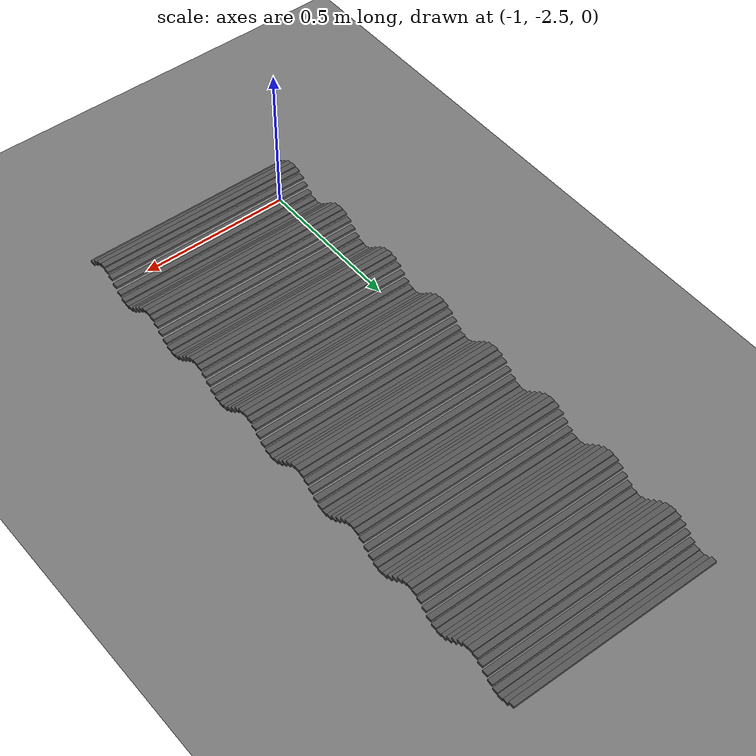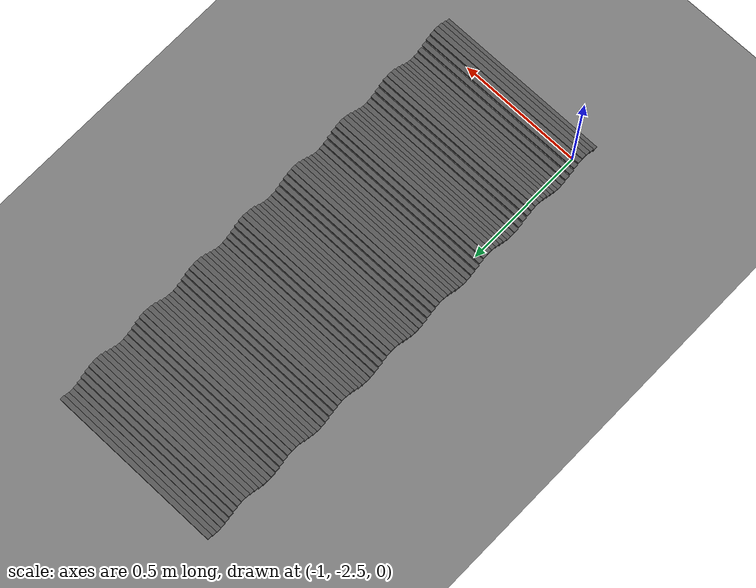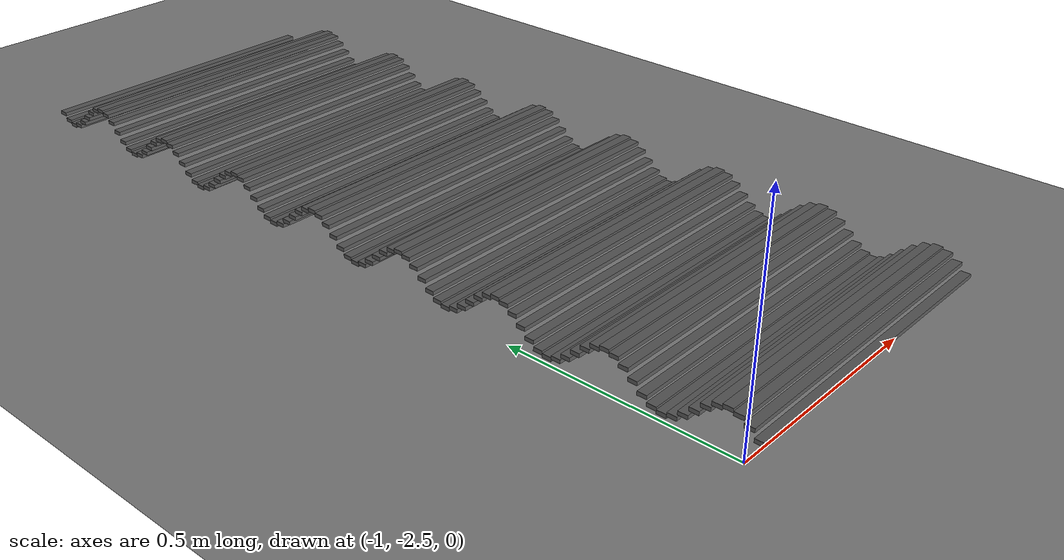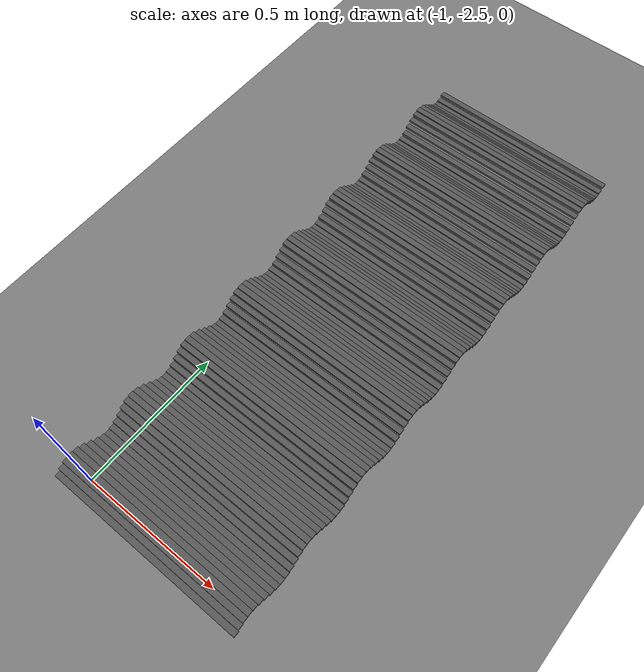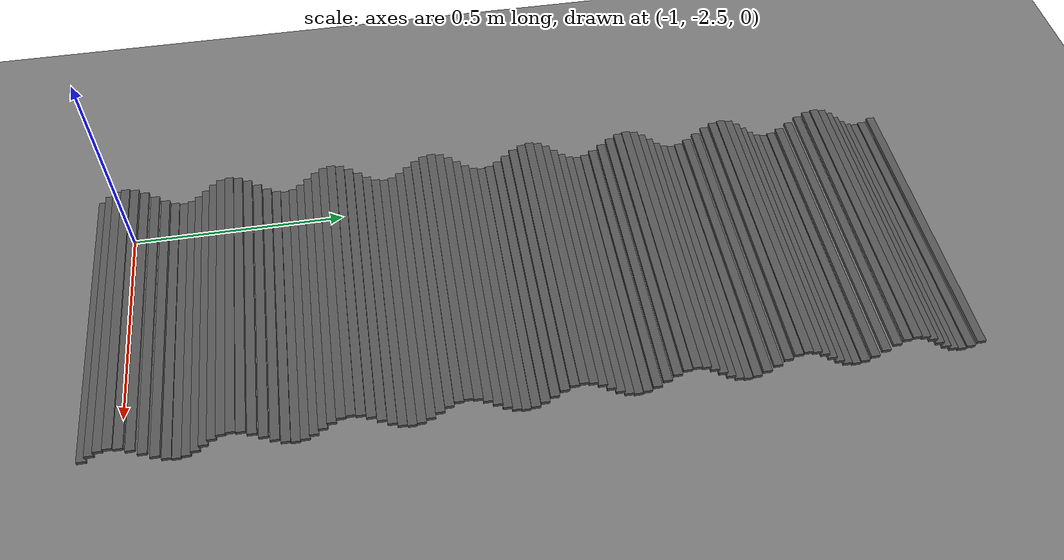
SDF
<sdf version="1.7">
 <world name="default">
  <plugin filename="gz-sim-physics-system" name="gz::sim::systems::Physics"/>
  <plugin filename="gz-sim-user-commands-system" name="gz::sim::systems::UserCommands"/>
  <plugin filename="gz-sim-scene-broadcaster-system" name="gz::sim::systems::SceneBroadcaster"/>
  <plugin filename="gz-sim-sensors-system" name="gz::sim::systems::Sensors">
   <render_engine>ogre2</render_engine>
  </plugin>
  <plugin filename="gz-sim-imu-system" name="gz::sim::systems::Imu"/>
  <physics name="default_physics" default="0" type="ode">
   <max_step_size>0.001</max_step_size>
   <real_time_factor>1</real_time_factor>
   <real_time_update_rate>1000</real_time_update_rate>
  </physics>
  <scene><ambient>0.4 0.4 0.4 1</ambient><background>0.7 0.7 0.7 1</background><shadows>1</shadows></scene>
  <light name="sun" type="directional">
   <pose>0 0 10 0 0 0</pose>
   <diffuse>0.8 0.8 0.8 1</diffuse>
   <specular>0.2 0.2 0.2 1</specular>
   <direction>-0.5 0.1 -0.9</direction>
  </light>
  <model name="ground_plane">
   <static>1</static>
   <link name="link">
    <collision name="collision">
     <geometry><plane><normal>0 0 1</normal><size>100 100</size></plane></geometry>
    </collision>
    <visual name="visual">
     <cast_shadows>0</cast_shadows>
     <geometry><plane><normal>0 0 1</normal><size>100 100</size></plane></geometry>
     <material><ambient>0.5 0.5 0.5 1</ambient><diffuse>0.5 0.5 0.5 1</diffuse></material>
    </visual>
   </link>
  </model>
  <model name="wave_strip_240mm_70mm">
   <static>true</static>
   <link name="wave_link">
    <collision name="c_000">
     <pose>-0.7000 -2.5500 0.0920 0 0 0</pose>
     <geometry><box><size>0.7000 0.0200 0.0080</size></box></geometry>
     <surface><friction><ode><mu>100</mu><mu2>50</mu2></ode></friction></surface>
    </collision>
    <visual name="v_000">
     <pose>-0.7000 -2.5500 0.0920 0 0 0</pose>
     <geometry><box><size>0.7000 0.0200 0.0080</size></box></geometry>
     <material>
      <ambient>0.20 0.20 0.20 1</ambient>
      <diffuse>0.35 0.35 0.35 1</diffuse>
      <specular>0.02 0.02 0.02 1</specular>
     </material>
    </visual>
    <collision name="c_001">
     <pose>-0.7000 -2.5300 0.1095 0 0 0</pose>
     <geometry><box><size>0.7000 0.0200 0.0080</size></box></geometry>
     <surface><friction><ode><mu>100</mu><mu2>50</mu2></ode></friction></surface>
    </collision>
    <visual name="v_001">
     <pose>-0.7000 -2.5300 0.1095 0 0 0</pose>
     <geometry><box><size>0.7000 0.0200 0.0080</size></box></geometry>
     <material>
      <ambient>0.20 0.20 0.20 1</ambient>
      <diffuse>0.35 0.35 0.35 1</diffuse>
      <specular>0.02 0.02 0.02 1</specular>
     </material>
    </visual>
    <collision name="c_002">
     <pose>-0.7000 -2.5100 0.1223 0 0 0</pose>
     <geometry><box><size>0.7000 0.0200 0.0080</size></box></geometry>
     <surface><friction><ode><mu>100</mu><mu2>50</mu2></ode></friction></surface>
    </collision>
    <visual name="v_002">
     <pose>-0.7000 -2.5100 0.1223 0 0 0</pose>
     <geometry><box><size>0.7000 0.0200 0.0080</size></box></geometry>
     <material>
      <ambient>0.20 0.20 0.20 1</ambient>
      <diffuse>0.35 0.35 0.35 1</diffuse>
      <specular>0.02 0.02 0.02 1</specular>
     </material>
    </visual>
    <collision name="c_003">
     <pose>-0.7000 -2.4900 0.1270 0 0 0</pose>
     <geometry><box><size>0.7000 0.0200 0.0080</size></box></geometry>
     <surface><friction><ode><mu>100</mu><mu2>50</mu2></ode></friction></surface>
    </collision>
    <visual name="v_003">
     <pose>-0.7000 -2.4900 0.1270 0 0 0</pose>
     <geometry><box><size>0.7000 0.0200 0.0080</size></box></geometry>
     <material>
      <ambient>0.20 0.20 0.20 1</ambient>
      <diffuse>0.35 0.35 0.35 1</diffuse>
      <specular>0.02 0.02 0.02 1</specular>
     </material>
    </visual>
    <collision name="c_004">
     <pose>-0.7000 -2.4700 0.1223 0 0 0</pose>
     <geometry><box><size>0.7000 0.0200 0.0080</size></box></geometry>
     <surface><friction><ode><mu>100</mu><mu2>50</mu2></ode></friction></surface>
    </collision>
    <visual name="v_004">
     <pose>-0.7000 -2.4700 0.1223 0 0 0</pose>
     <geometry><box><size>0.7000 0.0200 0.0080</size></box></geometry>
     <material>
      <ambient>0.20 0.20 0.20 1</ambient>
      <diffuse>0.35 0.35 0.35 1</diffuse>
      <specular>0.02 0.02 0.02 1</specular>
     </material>
    </visual>
    <collision name="c_005">
     <pose>-0.7000 -2.4500 0.1095 0 0 0</pose>
     <geometry><box><size>0.7000 0.0200 0.0080</size></box></geometry>
     <surface><friction><ode><mu>100</mu><mu2>50</mu2></ode></friction></surface>
    </collision>
    <visual name="v_005">
     <pose>-0.7000 -2.4500 0.1095 0 0 0</pose>
     <geometry><box><size>0.7000 0.0200 0.0080</size></box></geometry>
     <material>
      <ambient>0.20 0.20 0.20 1</ambient>
      <diffuse>0.35 0.35 0.35 1</diffuse>
      <specular>0.02 0.02 0.02 1</specular>
     </material>
    </visual>
    <collision name="c_006">
     <pose>-0.7000 -2.4300 0.0920 0 0 0</pose>
     <geometry><box><size>0.7000 0.0200 0.0080</size></box></geometry>
     <surface><friction><ode><mu>100</mu><mu2>50</mu2></ode></friction></surface>
    </collision>
    <visual name="v_006">
     <pose>-0.7000 -2.4300 0.0920 0 0 0</pose>
     <geometry><box><size>0.7000 0.0200 0.0080</size></box></geometry>
     <material>
      <ambient>0.20 0.20 0.20 1</ambient>
      <diffuse>0.35 0.35 0.35 1</diffuse>
      <specular>0.02 0.02 0.02 1</specular>
     </material>
    </visual>
    <collision name="c_007">
     <pose>-0.7000 -2.4100 0.0745 0 0 0</pose>
     <geometry><box><size>0.7000 0.0200 0.0080</size></box></geometry>
     <surface><friction><ode><mu>100</mu><mu2>50</mu2></ode></friction></surface>
    </collision>
    <visual name="v_007">
     <pose>-0.7000 -2.4100 0.0745 0 0 0</pose>
     <geometry><box><size>0.7000 0.0200 0.0080</size></box></geometry>
     <material>
      <ambient>0.20 0.20 0.20 1</ambient>
      <diffuse>0.35 0.35 0.35 1</diffuse>
      <specular>0.02 0.02 0.02 1</specular>
     </material>
    </visual>
    <collision name="c_008">
     <pose>-0.7000 -2.3900 0.0617 0 0 0</pose>
     <geometry><box><size>0.7000 0.0200 0.0080</size></box></geometry>
     <surface><friction><ode><mu>100</mu><mu2>50</mu2></ode></friction></surface>
    </collision>
    <visual name="v_008">
     <pose>-0.7000 -2.3900 0.0617 0 0 0</pose>
     <geometry><box><size>0.7000 0.0200 0.0080</size></box></geometry>
     <material>
      <ambient>0.20 0.20 0.20 1</ambient>
      <diffuse>0.35 0.35 0.35 1</diffuse>
      <specular>0.02 0.02 0.02 1</specular>
     </material>
    </visual>
    <collision name="c_009">
     <pose>-0.7000 -2.3700 0.0570 0 0 0</pose>
     <geometry><box><size>0.7000 0.0200 0.0080</size></box></geometry>
     <surface><friction><ode><mu>100</mu><mu2>50</mu2></ode></friction></surface>
    </collision>
    <visual name="v_009">
     <pose>-0.7000 -2.3700 0.0570 0 0 0</pose>
     <geometry><box><size>0.7000 0.0200 0.0080</size></box></geometry>
     <material>
      <ambient>0.20 0.20 0.20 1</ambient>
      <diffuse>0.35 0.35 0.35 1</diffuse>
      <specular>0.02 0.02 0.02 1</specular>
     </material>
    </visual>
    <collision name="c_010">
     <pose>-0.7000 -2.3500 0.0617 0 0 0</pose>
     <geometry><box><size>0.7000 0.0200 0.0080</size></box></geometry>
     <surface><friction><ode><mu>100</mu><mu2>50</mu2></ode></friction></surface>
    </collision>
    <visual name="v_010">
     <pose>-0.7000 -2.3500 0.0617 0 0 0</pose>
     <geometry><box><size>0.7000 0.0200 0.0080</size></box></geometry>
     <material>
      <ambient>0.20 0.20 0.20 1</ambient>
      <diffuse>0.35 0.35 0.35 1</diffuse>
      <specular>0.02 0.02 0.02 1</specular>
     </material>
    </visual>
    <collision name="c_011">
     <pose>-0.7000 -2.3300 0.0745 0 0 0</pose>
     <geometry><box><size>0.7000 0.0200 0.0080</size></box></geometry>
     <surface><friction><ode><mu>100</mu><mu2>50</mu2></ode></friction></surface>
    </collision>
    <visual name="v_011">
     <pose>-0.7000 -2.3300 0.0745 0 0 0</pose>
     <geometry><box><size>0.7000 0.0200 0.0080</size></box></geometry>
     <material>
      <ambient>0.20 0.20 0.20 1</ambient>
      <diffuse>0.35 0.35 0.35 1</diffuse>
      <specular>0.02 0.02 0.02 1</specular>
     </material>
    </visual>
    <collision name="c_012">
     <pose>-0.7000 -2.3100 0.0920 0 0 0</pose>
     <geometry><box><size>0.7000 0.0200 0.0080</size></box></geometry>
     <surface><friction><ode><mu>100</mu><mu2>50</mu2></ode></friction></surface>
    </collision>
    <visual name="v_012">
     <pose>-0.7000 -2.3100 0.0920 0 0 0</pose>
     <geometry><box><size>0.7000 0.0200 0.0080</size></box></geometry>
     <material>
      <ambient>0.20 0.20 0.20 1</ambient>
      <diffuse>0.35 0.35 0.35 1</diffuse>
      <specular>0.02 0.02 0.02 1</specular>
     </material>
    </visual>
    <collision name="c_013">
     <pose>-0.7000 -2.2900 0.1095 0 0 0</pose>
     <geometry><box><size>0.7000 0.0200 0.0080</size></box></geometry>
     <surface><friction><ode><mu>100</mu><mu2>50</mu2></ode></friction></surface>
    </collision>
    <visual name="v_013">
     <pose>-0.7000 -2.2900 0.1095 0 0 0</pose>
     <geometry><box><size>0.7000 0.0200 0.0080</size></box></geometry>
     <material>
      <ambient>0.20 0.20 0.20 1</ambient>
      <diffuse>0.35 0.35 0.35 1</diffuse>
      <specular>0.02 0.02 0.02 1</specular>
     </material>
    </visual>
    <collision name="c_014">
     <pose>-0.7000 -2.2700 0.1223 0 0 0</pose>
     <geometry><box><size>0.7000 0.0200 0.0080</size></box></geometry>
     <surface><friction><ode><mu>100</mu><mu2>50</mu2></ode></friction></surface>
    </collision>
    <visual name="v_014">
     <pose>-0.7000 -2.2700 0.1223 0 0 0</pose>
     <geometry><box><size>0.7000 0.0200 0.0080</size></box></geometry>
     <material>
      <ambient>0.20 0.20 0.20 1</ambient>
      <diffuse>0.35 0.35 0.35 1</diffuse>
      <specular>0.02 0.02 0.02 1</specular>
     </material>
    </visual>
    <collision name="c_015">
     <pose>-0.7000 -2.2500 0.1270 0 0 0</pose>
     <geometry><box><size>0.7000 0.0200 0.0080</size></box></geometry>
     <surface><friction><ode><mu>100</mu><mu2>50</mu2></ode></friction></surface>
    </collision>
    <visual name="v_015">
     <pose>-0.7000 -2.2500 0.1270 0 0 0</pose>
     <geometry><box><size>0.7000 0.0200 0.0080</size></box></geometry>
     <material>
      <ambient>0.20 0.20 0.20 1</ambient>
      <diffuse>0.35 0.35 0.35 1</diffuse>
      <specular>0.02 0.02 0.02 1</specular>
     </material>
    </visual>
    <collision name="c_016">
     <pose>-0.7000 -2.2300 0.1223 0 0 0</pose>
     <geometry><box><size>0.7000 0.0200 0.0080</size></box></geometry>
     <surface><friction><ode><mu>100</mu><mu2>50</mu2></ode></friction></surface>
    </collision>
    <visual name="v_016">
     <pose>-0.7000 -2.2300 0.1223 0 0 0</pose>
     <geometry><box><size>0.7000 0.0200 0.0080</size></box></geometry>
     <material>
      <ambient>0.20 0.20 0.20 1</ambient>
      <diffuse>0.35 0.35 0.35 1</diffuse>
      <specular>0.02 0.02 0.02 1</specular>
     </material>
    </visual>
    <collision name="c_017">
     <pose>-0.7000 -2.2100 0.1095 0 0 0</pose>
     <geometry><box><size>0.7000 0.0200 0.0080</size></box></geometry>
     <surface><friction><ode><mu>100</mu><mu2>50</mu2></ode></friction></surface>
    </collision>
    <visual name="v_017">
     <pose>-0.7000 -2.2100 0.1095 0 0 0</pose>
     <geometry><box><size>0.7000 0.0200 0.0080</size></box></geometry>
     <material>
      <ambient>0.20 0.20 0.20 1</ambient>
      <diffuse>0.35 0.35 0.35 1</diffuse>
      <specular>0.02 0.02 0.02 1</specular>
     </material>
    </visual>
    <collision name="c_018">
     <pose>-0.7000 -2.1900 0.0920 0 0 0</pose>
     <geometry><box><size>0.7000 0.0200 0.0080</size></box></geometry>
     <surface><friction><ode><mu>100</mu><mu2>50</mu2></ode></friction></surface>
    </collision>
    <visual name="v_018">
     <pose>-0.7000 -2.1900 0.0920 0 0 0</pose>
     <geometry><box><size>0.7000 0.0200 0.0080</size></box></geometry>
     <material>
      <ambient>0.20 0.20 0.20 1</ambient>
      <diffuse>0.35 0.35 0.35 1</diffuse>
      <specular>0.02 0.02 0.02 1</specular>
     </material>
    </visual>
    <collision name="c_019">
     <pose>-0.7000 -2.1700 0.0745 0 0 0</pose>
     <geometry><box><size>0.7000 0.0200 0.0080</size></box></geometry>
     <surface><friction><ode><mu>100</mu><mu2>50</mu2></ode></friction></surface>
    </collision>
    <visual name="v_019">
     <pose>-0.7000 -2.1700 0.0745 0 0 0</pose>
     <geometry><box><size>0.7000 0.0200 0.0080</size></box></geometry>
     <material>
      <ambient>0.20 0.20 0.20 1</ambient>
      <diffuse>0.35 0.35 0.35 1</diffuse>
      <specular>0.02 0.02 0.02 1</specular>
     </material>
    </visual>
    <collision name="c_020">
     <pose>-0.7000 -2.1500 0.0617 0 0 0</pose>
     <geometry><box><size>0.7000 0.0200 0.0080</size></box></geometry>
     <surface><friction><ode><mu>100</mu><mu2>50</mu2></ode></friction></surface>
    </collision>
    <visual name="v_020">
     <pose>-0.7000 -2.1500 0.0617 0 0 0</pose>
     <geometry><box><size>0.7000 0.0200 0.0080</size></box></geometry>
     <material>
      <ambient>0.20 0.20 0.20 1</ambient>
      <diffuse>0.35 0.35 0.35 1</diffuse>
      <specular>0.02 0.02 0.02 1</specular>
     </material>
    </visual>
    <collision name="c_021">
     <pose>-0.7000 -2.1300 0.0570 0 0 0</pose>
     <geometry><box><size>0.7000 0.0200 0.0080</size></box></geometry>
     <surface><friction><ode><mu>100</mu><mu2>50</mu2></ode></friction></surface>
    </collision>
    <visual name="v_021">
     <pose>-0.7000 -2.1300 0.0570 0 0 0</pose>
     <geometry><box><size>0.7000 0.0200 0.0080</size></box></geometry>
     <material>
      <ambient>0.20 0.20 0.20 1</ambient>
      <diffuse>0.35 0.35 0.35 1</diffuse>
      <specular>0.02 0.02 0.02 1</specular>
     </material>
    </visual>
    <collision name="c_022">
     <pose>-0.7000 -2.1100 0.0617 0 0 0</pose>
     <geometry><box><size>0.7000 0.0200 0.0080</size></box></geometry>
     <surface><friction><ode><mu>100</mu><mu2>50</mu2></ode></friction></surface>
    </collision>
    <visual name="v_022">
     <pose>-0.7000 -2.1100 0.0617 0 0 0</pose>
     <geometry><box><size>0.7000 0.0200 0.0080</size></box></geometry>
     <material>
      <ambient>0.20 0.20 0.20 1</ambient>
      <diffuse>0.35 0.35 0.35 1</diffuse>
      <specular>0.02 0.02 0.02 1</specular>
     </material>
    </visual>
    <collision name="c_023">
     <pose>-0.7000 -2.0900 0.0745 0 0 0</pose>
     <geometry><box><size>0.7000 0.0200 0.0080</size></box></geometry>
     <surface><friction><ode><mu>100</mu><mu2>50</mu2></ode></friction></surface>
    </collision>
    <visual name="v_023">
     <pose>-0.7000 -2.0900 0.0745 0 0 0</pose>
     <geometry><box><size>0.7000 0.0200 0.0080</size></box></geometry>
     <material>
      <ambient>0.20 0.20 0.20 1</ambient>
      <diffuse>0.35 0.35 0.35 1</diffuse>
      <specular>0.02 0.02 0.02 1</specular>
     </material>
    </visual>
    <collision name="c_024">
     <pose>-0.7000 -2.0700 0.0920 0 0 0</pose>
     <geometry><box><size>0.7000 0.0200 0.0080</size></box></geometry>
     <surface><friction><ode><mu>100</mu><mu2>50</mu2></ode></friction></surface>
    </collision>
    <visual name="v_024">
     <pose>-0.7000 -2.0700 0.0920 0 0 0</pose>
     <geometry><box><size>0.7000 0.0200 0.0080</size></box></geometry>
     <material>
      <ambient>0.20 0.20 0.20 1</ambient>
      <diffuse>0.35 0.35 0.35 1</diffuse>
      <specular>0.02 0.02 0.02 1</specular>
     </material>
    </visual>
    <collision name="c_025">
     <pose>-0.7000 -2.0500 0.1095 0 0 0</pose>
     <geometry><box><size>0.7000 0.0200 0.0080</size></box></geometry>
     <surface><friction><ode><mu>100</mu><mu2>50</mu2></ode></friction></surface>
    </collision>
    <visual name="v_025">
     <pose>-0.7000 -2.0500 0.1095 0 0 0</pose>
     <geometry><box><size>0.7000 0.0200 0.0080</size></box></geometry>
     <material>
      <ambient>0.20 0.20 0.20 1</ambient>
      <diffuse>0.35 0.35 0.35 1</diffuse>
      <specular>0.02 0.02 0.02 1</specular>
     </material>
    </visual>
    <collision name="c_026">
     <pose>-0.7000 -2.0300 0.1223 0 0 0</pose>
     <geometry><box><size>0.7000 0.0200 0.0080</size></box></geometry>
     <surface><friction><ode><mu>100</mu><mu2>50</mu2></ode></friction></surface>
    </collision>
    <visual name="v_026">
     <pose>-0.7000 -2.0300 0.1223 0 0 0</pose>
     <geometry><box><size>0.7000 0.0200 0.0080</size></box></geometry>
     <material>
      <ambient>0.20 0.20 0.20 1</ambient>
      <diffuse>0.35 0.35 0.35 1</diffuse>
      <specular>0.02 0.02 0.02 1</specular>
     </material>
    </visual>
    <collision name="c_027">
     <pose>-0.7000 -2.0100 0.1270 0 0 0</pose>
     <geometry><box><size>0.7000 0.0200 0.0080</size></box></geometry>
     <surface><friction><ode><mu>100</mu><mu2>50</mu2></ode></friction></surface>
    </collision>
    <visual name="v_027">
     <pose>-0.7000 -2.0100 0.1270 0 0 0</pose>
     <geometry><box><size>0.7000 0.0200 0.0080</size></box></geometry>
     <material>
      <ambient>0.20 0.20 0.20 1</ambient>
      <diffuse>0.35 0.35 0.35 1</diffuse>
      <specular>0.02 0.02 0.02 1</specular>
     </material>
    </visual>
    <collision name="c_028">
     <pose>-0.7000 -1.9900 0.1223 0 0 0</pose>
     <geometry><box><size>0.7000 0.0200 0.0080</size></box></geometry>
     <surface><friction><ode><mu>100</mu><mu2>50</mu2></ode></friction></surface>
    </collision>
    <visual name="v_028">
     <pose>-0.7000 -1.9900 0.1223 0 0 0</pose>
     <geometry><box><size>0.7000 0.0200 0.0080</size></box></geometry>
     <material>
      <ambient>0.20 0.20 0.20 1</ambient>
      <diffuse>0.35 0.35 0.35 1</diffuse>
      <specular>0.02 0.02 0.02 1</specular>
     </material>
    </visual>
    <collision name="c_029">
     <pose>-0.7000 -1.9700 0.1095 0 0 0</pose>
     <geometry><box><size>0.7000 0.0200 0.0080</size></box></geometry>
     <surface><friction><ode><mu>100</mu><mu2>50</mu2></ode></friction></surface>
    </collision>
    <visual name="v_029">
     <pose>-0.7000 -1.9700 0.1095 0 0 0</pose>
     <geometry><box><size>0.7000 0.0200 0.0080</size></box></geometry>
     <material>
      <ambient>0.20 0.20 0.20 1</ambient>
      <diffuse>0.35 0.35 0.35 1</diffuse>
      <specular>0.02 0.02 0.02 1</specular>
     </material>
    </visual>
    <collision name="c_030">
     <pose>-0.7000 -1.9500 0.0920 0 0 0</pose>
     <geometry><box><size>0.7000 0.0200 0.0080</size></box></geometry>
     <surface><friction><ode><mu>100</mu><mu2>50</mu2></ode></friction></surface>
    </collision>
    <visual name="v_030">
     <pose>-0.7000 -1.9500 0.0920 0 0 0</pose>
     <geometry><box><size>0.7000 0.0200 0.0080</size></box></geometry>
     <material>
      <ambient>0.20 0.20 0.20 1</ambient>
      <diffuse>0.35 0.35 0.35 1</diffuse>
      <specular>0.02 0.02 0.02 1</specular>
     </material>
    </visual>
    <collision name="c_031">
     <pose>-0.7000 -1.9300 0.0745 0 0 0</pose>
     <geometry><box><size>0.7000 0.0200 0.0080</size></box></geometry>
     <surface><friction><ode><mu>100</mu><mu2>50</mu2></ode></friction></surface>
    </collision>
    <visual name="v_031">
     <pose>-0.7000 -1.9300 0.0745 0 0 0</pose>
     <geometry><box><size>0.7000 0.0200 0.0080</size></box></geometry>
     <material>
      <ambient>0.20 0.20 0.20 1</ambient>
      <diffuse>0.35 0.35 0.35 1</diffuse>
      <specular>0.02 0.02 0.02 1</specular>
     </material>
    </visual>
    <collision name="c_032">
     <pose>-0.7000 -1.9100 0.0617 0 0 0</pose>
     <geometry><box><size>0.7000 0.0200 0.0080</size></box></geometry>
     <surface><friction><ode><mu>100</mu><mu2>50</mu2></ode></friction></surface>
    </collision>
    <visual name="v_032">
     <pose>-0.7000 -1.9100 0.0617 0 0 0</pose>
     <geometry><box><size>0.7000 0.0200 0.0080</size></box></geometry>
     <material>
      <ambient>0.20 0.20 0.20 1</ambient>
      <diffuse>0.35 0.35 0.35 1</diffuse>
      <specular>0.02 0.02 0.02 1</specular>
     </material>
    </visual>
    <collision name="c_033">
     <pose>-0.7000 -1.8900 0.0570 0 0 0</pose>
     <geometry><box><size>0.7000 0.0200 0.0080</size></box></geometry>
     <surface><friction><ode><mu>100</mu><mu2>50</mu2></ode></friction></surface>
    </collision>
    <visual name="v_033">
     <pose>-0.7000 -1.8900 0.0570 0 0 0</pose>
     <geometry><box><size>0.7000 0.0200 0.0080</size></box></geometry>
     <material>
      <ambient>0.20 0.20 0.20 1</ambient>
      <diffuse>0.35 0.35 0.35 1</diffuse>
      <specular>0.02 0.02 0.02 1</specular>
     </material>
    </visual>
    <collision name="c_034">
     <pose>-0.7000 -1.8700 0.0617 0 0 0</pose>
     <geometry><box><size>0.7000 0.0200 0.0080</size></box></geometry>
     <surface><friction><ode><mu>100</mu><mu2>50</mu2></ode></friction></surface>
    </collision>
    <visual name="v_034">
     <pose>-0.7000 -1.8700 0.0617 0 0 0</pose>
     <geometry><box><size>0.7000 0.0200 0.0080</size></box></geometry>
     <material>
      <ambient>0.20 0.20 0.20 1</ambient>
      <diffuse>0.35 0.35 0.35 1</diffuse>
      <specular>0.02 0.02 0.02 1</specular>
     </material>
    </visual>
    <collision name="c_035">
     <pose>-0.7000 -1.8500 0.0745 0 0 0</pose>
     <geometry><box><size>0.7000 0.0200 0.0080</size></box></geometry>
     <surface><friction><ode><mu>100</mu><mu2>50</mu2></ode></friction></surface>
    </collision>
    <visual name="v_035">
     <pose>-0.7000 -1.8500 0.0745 0 0 0</pose>
     <geometry><box><size>0.7000 0.0200 0.0080</size></box></geometry>
     <material>
      <ambient>0.20 0.20 0.20 1</ambient>
      <diffuse>0.35 0.35 0.35 1</diffuse>
      <specular>0.02 0.02 0.02 1</specular>
     </material>
    </visual>
    <collision name="c_036">
     <pose>-0.7000 -1.8300 0.0920 0 0 0</pose>
     <geometry><box><size>0.7000 0.0200 0.0080</size></box></geometry>
     <surface><friction><ode><mu>100</mu><mu2>50</mu2></ode></friction></surface>
    </collision>
    <visual name="v_036">
     <pose>-0.7000 -1.8300 0.0920 0 0 0</pose>
     <geometry><box><size>0.7000 0.0200 0.0080</size></box></geometry>
     <material>
      <ambient>0.20 0.20 0.20 1</ambient>
      <diffuse>0.35 0.35 0.35 1</diffuse>
      <specular>0.02 0.02 0.02 1</specular>
     </material>
    </visual>
    <collision name="c_037">
     <pose>-0.7000 -1.8100 0.1095 0 0 0</pose>
     <geometry><box><size>0.7000 0.0200 0.0080</size></box></geometry>
     <surface><friction><ode><mu>100</mu><mu2>50</mu2></ode></friction></surface>
    </collision>
    <visual name="v_037">
     <pose>-0.7000 -1.8100 0.1095 0 0 0</pose>
     <geometry><box><size>0.7000 0.0200 0.0080</size></box></geometry>
     <material>
      <ambient>0.20 0.20 0.20 1</ambient>
      <diffuse>0.35 0.35 0.35 1</diffuse>
      <specular>0.02 0.02 0.02 1</specular>
     </material>
    </visual>
    <collision name="c_038">
     <pose>-0.7000 -1.7900 0.1223 0 0 0</pose>
     <geometry><box><size>0.7000 0.0200 0.0080</size></box></geometry>
     <surface><friction><ode><mu>100</mu><mu2>50</mu2></ode></friction></surface>
    </collision>
    <visual name="v_038">
     <pose>-0.7000 -1.7900 0.1223 0 0 0</pose>
     <geometry><box><size>0.7000 0.0200 0.0080</size></box></geometry>
     <material>
      <ambient>0.20 0.20 0.20 1</ambient>
      <diffuse>0.35 0.35 0.35 1</diffuse>
      <specular>0.02 0.02 0.02 1</specular>
     </material>
    </visual>
    <collision name="c_039">
     <pose>-0.7000 -1.7700 0.1270 0 0 0</pose>
     <geometry><box><size>0.7000 0.0200 0.0080</size></box></geometry>
     <surface><friction><ode><mu>100</mu><mu2>50</mu2></ode></friction></surface>
    </collision>
    <visual name="v_039">
     <pose>-0.7000 -1.7700 0.1270 0 0 0</pose>
     <geometry><box><size>0.7000 0.0200 0.0080</size></box></geometry>
     <material>
      <ambient>0.20 0.20 0.20 1</ambient>
      <diffuse>0.35 0.35 0.35 1</diffuse>
      <specular>0.02 0.02 0.02 1</specular>
     </material>
    </visual>
    <collision name="c_040">
     <pose>-0.7000 -1.7500 0.1223 0 0 0</pose>
     <geometry><box><size>0.7000 0.0200 0.0080</size></box></geometry>
     <surface><friction><ode><mu>100</mu><mu2>50</mu2></ode></friction></surface>
    </collision>
    <visual name="v_040">
     <pose>-0.7000 -1.7500 0.1223 0 0 0</pose>
     <geometry><box><size>0.7000 0.0200 0.0080</size></box></geometry>
     <material>
      <ambient>0.20 0.20 0.20 1</ambient>
      <diffuse>0.35 0.35 0.35 1</diffuse>
      <specular>0.02 0.02 0.02 1</specular>
     </material>
    </visual>
    <collision name="c_041">
     <pose>-0.7000 -1.7300 0.1095 0 0 0</pose>
     <geometry><box><size>0.7000 0.0200 0.0080</size></box></geometry>
     <surface><friction><ode><mu>100</mu><mu2>50</mu2></ode></friction></surface>
    </collision>
    <visual name="v_041">
     <pose>-0.7000 -1.7300 0.1095 0 0 0</pose>
     <geometry><box><size>0.7000 0.0200 0.0080</size></box></geometry>
     <material>
      <ambient>0.20 0.20 0.20 1</ambient>
      <diffuse>0.35 0.35 0.35 1</diffuse>
      <specular>0.02 0.02 0.02 1</specular>
     </material>
    </visual>
    <collision name="c_042">
     <pose>-0.7000 -1.7100 0.0920 0 0 0</pose>
     <geometry><box><size>0.7000 0.0200 0.0080</size></box></geometry>
     <surface><friction><ode><mu>100</mu><mu2>50</mu2></ode></friction></surface>
    </collision>
    <visual name="v_042">
     <pose>-0.7000 -1.7100 0.0920 0 0 0</pose>
     <geometry><box><size>0.7000 0.0200 0.0080</size></box></geometry>
     <material>
      <ambient>0.20 0.20 0.20 1</ambient>
      <diffuse>0.35 0.35 0.35 1</diffuse>
      <specular>0.02 0.02 0.02 1</specular>
     </material>
    </visual>
    <collision name="c_043">
     <pose>-0.7000 -1.6900 0.0745 0 0 0</pose>
     <geometry><box><size>0.7000 0.0200 0.0080</size></box></geometry>
     <surface><friction><ode><mu>100</mu><mu2>50</mu2></ode></friction></surface>
    </collision>
    <visual name="v_043">
     <pose>-0.7000 -1.6900 0.0745 0 0 0</pose>
     <geometry><box><size>0.7000 0.0200 0.0080</size></box></geometry>
     <material>
      <ambient>0.20 0.20 0.20 1</ambient>
      <diffuse>0.35 0.35 0.35 1</diffuse>
      <specular>0.02 0.02 0.02 1</specular>
     </material>
    </visual>
    <collision name="c_044">
     <pose>-0.7000 -1.6700 0.0617 0 0 0</pose>
     <geometry><box><size>0.7000 0.0200 0.0080</size></box></geometry>
     <surface><friction><ode><mu>100</mu><mu2>50</mu2></ode></friction></surface>
    </collision>
    <visual name="v_044">
     <pose>-0.7000 -1.6700 0.0617 0 0 0</pose>
     <geometry><box><size>0.7000 0.0200 0.0080</size></box></geometry>
     <material>
      <ambient>0.20 0.20 0.20 1</ambient>
      <diffuse>0.35 0.35 0.35 1</diffuse>
      <specular>0.02 0.02 0.02 1</specular>
     </material>
    </visual>
    <collision name="c_045">
     <pose>-0.7000 -1.6500 0.0570 0 0 0</pose>
     <geometry><box><size>0.7000 0.0200 0.0080</size></box></geometry>
     <surface><friction><ode><mu>100</mu><mu2>50</mu2></ode></friction></surface>
    </collision>
    <visual name="v_045">
     <pose>-0.7000 -1.6500 0.0570 0 0 0</pose>
     <geometry><box><size>0.7000 0.0200 0.0080</size></box></geometry>
     <material>
      <ambient>0.20 0.20 0.20 1</ambient>
      <diffuse>0.35 0.35 0.35 1</diffuse>
      <specular>0.02 0.02 0.02 1</specular>
     </material>
    </visual>
    <collision name="c_046">
     <pose>-0.7000 -1.6300 0.0617 0 0 0</pose>
     <geometry><box><size>0.7000 0.0200 0.0080</size></box></geometry>
     <surface><friction><ode><mu>100</mu><mu2>50</mu2></ode></friction></surface>
    </collision>
    <visual name="v_046">
     <pose>-0.7000 -1.6300 0.0617 0 0 0</pose>
     <geometry><box><size>0.7000 0.0200 0.0080</size></box></geometry>
     <material>
      <ambient>0.20 0.20 0.20 1</ambient>
      <diffuse>0.35 0.35 0.35 1</diffuse>
      <specular>0.02 0.02 0.02 1</specular>
     </material>
    </visual>
    <collision name="c_047">
     <pose>-0.7000 -1.6100 0.0745 0 0 0</pose>
     <geometry><box><size>0.7000 0.0200 0.0080</size></box></geometry>
     <surface><friction><ode><mu>100</mu><mu2>50</mu2></ode></friction></surface>
    </collision>
    <visual name="v_047">
     <pose>-0.7000 -1.6100 0.0745 0 0 0</pose>
     <geometry><box><size>0.7000 0.0200 0.0080</size></box></geometry>
     <material>
      <ambient>0.20 0.20 0.20 1</ambient>
      <diffuse>0.35 0.35 0.35 1</diffuse>
      <specular>0.02 0.02 0.02 1</specular>
     </material>
    </visual>
    <collision name="c_048">
     <pose>-0.7000 -1.5900 0.0920 0 0 0</pose>
     <geometry><box><size>0.7000 0.0200 0.0080</size></box></geometry>
     <surface><friction><ode><mu>100</mu><mu2>50</mu2></ode></friction></surface>
    </collision>
    <visual name="v_048">
     <pose>-0.7000 -1.5900 0.0920 0 0 0</pose>
     <geometry><box><size>0.7000 0.0200 0.0080</size></box></geometry>
     <material>
      <ambient>0.20 0.20 0.20 1</ambient>
      <diffuse>0.35 0.35 0.35 1</diffuse>
      <specular>0.02 0.02 0.02 1</specular>
     </material>
    </visual>
    <collision name="c_049">
     <pose>-0.7000 -1.5700 0.1095 0 0 0</pose>
     <geometry><box><size>0.7000 0.0200 0.0080</size></box></geometry>
     <surface><friction><ode><mu>100</mu><mu2>50</mu2></ode></friction></surface>
    </collision>
    <visual name="v_049">
     <pose>-0.7000 -1.5700 0.1095 0 0 0</pose>
     <geometry><box><size>0.7000 0.0200 0.0080</size></box></geometry>
     <material>
      <ambient>0.20 0.20 0.20 1</ambient>
      <diffuse>0.35 0.35 0.35 1</diffuse>
      <specular>0.02 0.02 0.02 1</specular>
     </material>
    </visual>
    <collision name="c_050">
     <pose>-0.7000 -1.5500 0.1223 0 0 0</pose>
     <geometry><box><size>0.7000 0.0200 0.0080</size></box></geometry>
     <surface><friction><ode><mu>100</mu><mu2>50</mu2></ode></friction></surface>
    </collision>
    <visual name="v_050">
     <pose>-0.7000 -1.5500 0.1223 0 0 0</pose>
     <geometry><box><size>0.7000 0.0200 0.0080</size></box></geometry>
     <material>
      <ambient>0.20 0.20 0.20 1</ambient>
      <diffuse>0.35 0.35 0.35 1</diffuse>
      <specular>0.02 0.02 0.02 1</specular>
     </material>
    </visual>
    <collision name="c_051">
     <pose>-0.7000 -1.5300 0.1270 0 0 0</pose>
     <geometry><box><size>0.7000 0.0200 0.0080</size></box></geometry>
     <surface><friction><ode><mu>100</mu><mu2>50</mu2></ode></friction></surface>
    </collision>
    <visual name="v_051">
     <pose>-0.7000 -1.5300 0.1270 0 0 0</pose>
     <geometry><box><size>0.7000 0.0200 0.0080</size></box></geometry>
     <material>
      <ambient>0.20 0.20 0.20 1</ambient>
      <diffuse>0.35 0.35 0.35 1</diffuse>
      <specular>0.02 0.02 0.02 1</specular>
     </material>
    </visual>
    <collision name="c_052">
     <pose>-0.7000 -1.5100 0.1223 0 0 0</pose>
     <geometry><box><size>0.7000 0.0200 0.0080</size></box></geometry>
     <surface><friction><ode><mu>100</mu><mu2>50</mu2></ode></friction></surface>
    </collision>
    <visual name="v_052">
     <pose>-0.7000 -1.5100 0.1223 0 0 0</pose>
     <geometry><box><size>0.7000 0.0200 0.0080</size></box></geometry>
     <material>
      <ambient>0.20 0.20 0.20 1</ambient>
      <diffuse>0.35 0.35 0.35 1</diffuse>
      <specular>0.02 0.02 0.02 1</specular>
     </material>
    </visual>
    <collision name="c_053">
     <pose>-0.7000 -1.4900 0.1095 0 0 0</pose>
     <geometry><box><size>0.7000 0.0200 0.0080</size></box></geometry>
     <surface><friction><ode><mu>100</mu><mu2>50</mu2></ode></friction></surface>
    </collision>
    <visual name="v_053">
     <pose>-0.7000 -1.4900 0.1095 0 0 0</pose>
     <geometry><box><size>0.7000 0.0200 0.0080</size></box></geometry>
     <material>
      <ambient>0.20 0.20 0.20 1</ambient>
      <diffuse>0.35 0.35 0.35 1</diffuse>
      <specular>0.02 0.02 0.02 1</specular>
     </material>
    </visual>
    <collision name="c_054">
     <pose>-0.7000 -1.4700 0.0920 0 0 0</pose>
     <geometry><box><size>0.7000 0.0200 0.0080</size></box></geometry>
     <surface><friction><ode><mu>100</mu><mu2>50</mu2></ode></friction></surface>
    </collision>
    <visual name="v_054">
     <pose>-0.7000 -1.4700 0.0920 0 0 0</pose>
     <geometry><box><size>0.7000 0.0200 0.0080</size></box></geometry>
     <material>
      <ambient>0.20 0.20 0.20 1</ambient>
      <diffuse>0.35 0.35 0.35 1</diffuse>
      <specular>0.02 0.02 0.02 1</specular>
     </material>
    </visual>
    <collision name="c_055">
     <pose>-0.7000 -1.4500 0.0745 0 0 0</pose>
     <geometry><box><size>0.7000 0.0200 0.0080</size></box></geometry>
     <surface><friction><ode><mu>100</mu><mu2>50</mu2></ode></friction></surface>
    </collision>
    <visual name="v_055">
     <pose>-0.7000 -1.4500 0.0745 0 0 0</pose>
     <geometry><box><size>0.7000 0.0200 0.0080</size></box></geometry>
     <material>
      <ambient>0.20 0.20 0.20 1</ambient>
      <diffuse>0.35 0.35 0.35 1</diffuse>
      <specular>0.02 0.02 0.02 1</specular>
     </material>
    </visual>
    <collision name="c_056">
     <pose>-0.7000 -1.4300 0.0617 0 0 0</pose>
     <geometry><box><size>0.7000 0.0200 0.0080</size></box></geometry>
     <surface><friction><ode><mu>100</mu><mu2>50</mu2></ode></friction></surface>
    </collision>
    <visual name="v_056">
     <pose>-0.7000 -1.4300 0.0617 0 0 0</pose>
     <geometry><box><size>0.7000 0.0200 0.0080</size></box></geometry>
     <material>
      <ambient>0.20 0.20 0.20 1</ambient>
      <diffuse>0.35 0.35 0.35 1</diffuse>
      <specular>0.02 0.02 0.02 1</specular>
     </material>
    </visual>
    <collision name="c_057">
     <pose>-0.7000 -1.4100 0.0570 0 0 0</pose>
     <geometry><box><size>0.7000 0.0200 0.0080</size></box></geometry>
     <surface><friction><ode><mu>100</mu><mu2>50</mu2></ode></friction></surface>
    </collision>
    <visual name="v_057">
     <pose>-0.7000 -1.4100 0.0570 0 0 0</pose>
     <geometry><box><size>0.7000 0.0200 0.0080</size></box></geometry>
     <material>
      <ambient>0.20 0.20 0.20 1</ambient>
      <diffuse>0.35 0.35 0.35 1</diffuse>
      <specular>0.02 0.02 0.02 1</specular>
     </material>
    </visual>
    <collision name="c_058">
     <pose>-0.7000 -1.3900 0.0617 0 0 0</pose>
     <geometry><box><size>0.7000 0.0200 0.0080</size></box></geometry>
     <surface><friction><ode><mu>100</mu><mu2>50</mu2></ode></friction></surface>
    </collision>
    <visual name="v_058">
     <pose>-0.7000 -1.3900 0.0617 0 0 0</pose>
     <geometry><box><size>0.7000 0.0200 0.0080</size></box></geometry>
     <material>
      <ambient>0.20 0.20 0.20 1</ambient>
      <diffuse>0.35 0.35 0.35 1</diffuse>
      <specular>0.02 0.02 0.02 1</specular>
     </material>
    </visual>
    <collision name="c_059">
     <pose>-0.7000 -1.3700 0.0745 0 0 0</pose>
     <geometry><box><size>0.7000 0.0200 0.0080</size></box></geometry>
     <surface><friction><ode><mu>100</mu><mu2>50</mu2></ode></friction></surface>
    </collision>
    <visual name="v_059">
     <pose>-0.7000 -1.3700 0.0745 0 0 0</pose>
     <geometry><box><size>0.7000 0.0200 0.0080</size></box></geometry>
     <material>
      <ambient>0.20 0.20 0.20 1</ambient>
      <diffuse>0.35 0.35 0.35 1</diffuse>
      <specular>0.02 0.02 0.02 1</specular>
     </material>
    </visual>
    <collision name="c_060">
     <pose>-0.7000 -1.3500 0.0920 0 0 0</pose>
     <geometry><box><size>0.7000 0.0200 0.0080</size></box></geometry>
     <surface><friction><ode><mu>100</mu><mu2>50</mu2></ode></friction></surface>
    </collision>
    <visual name="v_060">
     <pose>-0.7000 -1.3500 0.0920 0 0 0</pose>
     <geometry><box><size>0.7000 0.0200 0.0080</size></box></geometry>
     <material>
      <ambient>0.20 0.20 0.20 1</ambient>
      <diffuse>0.35 0.35 0.35 1</diffuse>
      <specular>0.02 0.02 0.02 1</specular>
     </material>
    </visual>
    <collision name="c_061">
     <pose>-0.7000 -1.3300 0.1095 0 0 0</pose>
     <geometry><box><size>0.7000 0.0200 0.0080</size></box></geometry>
     <surface><friction><ode><mu>100</mu><mu2>50</mu2></ode></friction></surface>
    </collision>
    <visual name="v_061">
     <pose>-0.7000 -1.3300 0.1095 0 0 0</pose>
     <geometry><box><size>0.7000 0.0200 0.0080</size></box></geometry>
     <material>
      <ambient>0.20 0.20 0.20 1</ambient>
      <diffuse>0.35 0.35 0.35 1</diffuse>
      <specular>0.02 0.02 0.02 1</specular>
     </material>
    </visual>
    <collision name="c_062">
     <pose>-0.7000 -1.3100 0.1223 0 0 0</pose>
     <geometry><box><size>0.7000 0.0200 0.0080</size></box></geometry>
     <surface><friction><ode><mu>100</mu><mu2>50</mu2></ode></friction></surface>
    </collision>
    <visual name="v_062">
     <pose>-0.7000 -1.3100 0.1223 0 0 0</pose>
     <geometry><box><size>0.7000 0.0200 0.0080</size></box></geometry>
     <material>
      <ambient>0.20 0.20 0.20 1</ambient>
      <diffuse>0.35 0.35 0.35 1</diffuse>
      <specular>0.02 0.02 0.02 1</specular>
     </material>
    </visual>
    <collision name="c_063">
     <pose>-0.7000 -1.2900 0.1270 0 0 0</pose>
     <geometry><box><size>0.7000 0.0200 0.0080</size></box></geometry>
     <surface><friction><ode><mu>100</mu><mu2>50</mu2></ode></friction></surface>
    </collision>
    <visual name="v_063">
     <pose>-0.7000 -1.2900 0.1270 0 0 0</pose>
     <geometry><box><size>0.7000 0.0200 0.0080</size></box></geometry>
     <material>
      <ambient>0.20 0.20 0.20 1</ambient>
      <diffuse>0.35 0.35 0.35 1</diffuse>
      <specular>0.02 0.02 0.02 1</specular>
     </material>
    </visual>
    <collision name="c_064">
     <pose>-0.7000 -1.2700 0.1223 0 0 0</pose>
     <geometry><box><size>0.7000 0.0200 0.0080</size></box></geometry>
     <surface><friction><ode><mu>100</mu><mu2>50</mu2></ode></friction></surface>
    </collision>
    <visual name="v_064">
     <pose>-0.7000 -1.2700 0.1223 0 0 0</pose>
     <geometry><box><size>0.7000 0.0200 0.0080</size></box></geometry>
     <material>
      <ambient>0.20 0.20 0.20 1</ambient>
      <diffuse>0.35 0.35 0.35 1</diffuse>
      <specular>0.02 0.02 0.02 1</specular>
     </material>
    </visual>
    <collision name="c_065">
     <pose>-0.7000 -1.2500 0.1095 0 0 0</pose>
     <geometry><box><size>0.7000 0.0200 0.0080</size></box></geometry>
     <surface><friction><ode><mu>100</mu><mu2>50</mu2></ode></friction></surface>
    </collision>
    <visual name="v_065">
     <pose>-0.7000 -1.2500 0.1095 0 0 0</pose>
     <geometry><box><size>0.7000 0.0200 0.0080</size></box></geometry>
     <material>
      <ambient>0.20 0.20 0.20 1</ambient>
      <diffuse>0.35 0.35 0.35 1</diffuse>
      <specular>0.02 0.02 0.02 1</specular>
     </material>
    </visual>
    <collision name="c_066">
     <pose>-0.7000 -1.2300 0.0920 0 0 0</pose>
     <geometry><box><size>0.7000 0.0200 0.0080</size></box></geometry>
     <surface><friction><ode><mu>100</mu><mu2>50</mu2></ode></friction></surface>
    </collision>
    <visual name="v_066">
     <pose>-0.7000 -1.2300 0.0920 0 0 0</pose>
     <geometry><box><size>0.7000 0.0200 0.0080</size></box></geometry>
     <material>
      <ambient>0.20 0.20 0.20 1</ambient>
      <diffuse>0.35 0.35 0.35 1</diffuse>
      <specular>0.02 0.02 0.02 1</specular>
     </material>
    </visual>
    <collision name="c_067">
     <pose>-0.7000 -1.2100 0.0745 0 0 0</pose>
     <geometry><box><size>0.7000 0.0200 0.0080</size></box></geometry>
     <surface><friction><ode><mu>100</mu><mu2>50</mu2></ode></friction></surface>
    </collision>
    <visual name="v_067">
     <pose>-0.7000 -1.2100 0.0745 0 0 0</pose>
     <geometry><box><size>0.7000 0.0200 0.0080</size></box></geometry>
     <material>
      <ambient>0.20 0.20 0.20 1</ambient>
      <diffuse>0.35 0.35 0.35 1</diffuse>
      <specular>0.02 0.02 0.02 1</specular>
     </material>
    </visual>
    <collision name="c_068">
     <pose>-0.7000 -1.1900 0.0617 0 0 0</pose>
     <geometry><box><size>0.7000 0.0200 0.0080</size></box></geometry>
     <surface><friction><ode><mu>100</mu><mu2>50</mu2></ode></friction></surface>
    </collision>
    <visual name="v_068">
     <pose>-0.7000 -1.1900 0.0617 0 0 0</pose>
     <geometry><box><size>0.7000 0.0200 0.0080</size></box></geometry>
     <material>
      <ambient>0.20 0.20 0.20 1</ambient>
      <diffuse>0.35 0.35 0.35 1</diffuse>
      <specular>0.02 0.02 0.02 1</specular>
     </material>
    </visual>
    <collision name="c_069">
     <pose>-0.7000 -1.1700 0.0570 0 0 0</pose>
     <geometry><box><size>0.7000 0.0200 0.0080</size></box></geometry>
     <surface><friction><ode><mu>100</mu><mu2>50</mu2></ode></friction></surface>
    </collision>
    <visual name="v_069">
     <pose>-0.7000 -1.1700 0.0570 0 0 0</pose>
     <geometry><box><size>0.7000 0.0200 0.0080</size></box></geometry>
     <material>
      <ambient>0.20 0.20 0.20 1</ambient>
      <diffuse>0.35 0.35 0.35 1</diffuse>
      <specular>0.02 0.02 0.02 1</specular>
     </material>
    </visual>
    <collision name="c_070">
     <pose>-0.7000 -1.1500 0.0617 0 0 0</pose>
     <geometry><box><size>0.7000 0.0200 0.0080</size></box></geometry>
     <surface><friction><ode><mu>100</mu><mu2>50</mu2></ode></friction></surface>
    </collision>
    <visual name="v_070">
     <pose>-0.7000 -1.1500 0.0617 0 0 0</pose>
     <geometry><box><size>0.7000 0.0200 0.0080</size></box></geometry>
     <material>
      <ambient>0.20 0.20 0.20 1</ambient>
      <diffuse>0.35 0.35 0.35 1</diffuse>
      <specular>0.02 0.02 0.02 1</specular>
     </material>
    </visual>
    <collision name="c_071">
     <pose>-0.7000 -1.1300 0.0745 0 0 0</pose>
     <geometry><box><size>0.7000 0.0200 0.0080</size></box></geometry>
     <surface><friction><ode><mu>100</mu><mu2>50</mu2></ode></friction></surface>
    </collision>
    <visual name="v_071">
     <pose>-0.7000 -1.1300 0.0745 0 0 0</pose>
     <geometry><box><size>0.7000 0.0200 0.0080</size></box></geometry>
     <material>
      <ambient>0.20 0.20 0.20 1</ambient>
      <diffuse>0.35 0.35 0.35 1</diffuse>
      <specular>0.02 0.02 0.02 1</specular>
     </material>
    </visual>
    <collision name="c_072">
     <pose>-0.7000 -1.1100 0.0920 0 0 0</pose>
     <geometry><box><size>0.7000 0.0200 0.0080</size></box></geometry>
     <surface><friction><ode><mu>100</mu><mu2>50</mu2></ode></friction></surface>
    </collision>
    <visual name="v_072">
     <pose>-0.7000 -1.1100 0.0920 0 0 0</pose>
     <geometry><box><size>0.7000 0.0200 0.0080</size></box></geometry>
     <material>
      <ambient>0.20 0.20 0.20 1</ambient>
      <diffuse>0.35 0.35 0.35 1</diffuse>
      <specular>0.02 0.02 0.02 1</specular>
     </material>
    </visual>
    <collision name="c_073">
     <pose>-0.7000 -1.0900 0.1095 0 0 0</pose>
     <geometry><box><size>0.7000 0.0200 0.0080</size></box></geometry>
     <surface><friction><ode><mu>100</mu><mu2>50</mu2></ode></friction></surface>
    </collision>
    <visual name="v_073">
     <pose>-0.7000 -1.0900 0.1095 0 0 0</pose>
     <geometry><box><size>0.7000 0.0200 0.0080</size></box></geometry>
     <material>
      <ambient>0.20 0.20 0.20 1</ambient>
      <diffuse>0.35 0.35 0.35 1</diffuse>
      <specular>0.02 0.02 0.02 1</specular>
     </material>
    </visual>
    <collision name="c_074">
     <pose>-0.7000 -1.0700 0.1223 0 0 0</pose>
     <geometry><box><size>0.7000 0.0200 0.0080</size></box></geometry>
     <surface><friction><ode><mu>100</mu><mu2>50</mu2></ode></friction></surface>
    </collision>
    <visual name="v_074">
     <pose>-0.7000 -1.0700 0.1223 0 0 0</pose>
     <geometry><box><size>0.7000 0.0200 0.0080</size></box></geometry>
     <material>
      <ambient>0.20 0.20 0.20 1</ambient>
      <diffuse>0.35 0.35 0.35 1</diffuse>
      <specular>0.02 0.02 0.02 1</specular>
     </material>
    </visual>
    <collision name="c_075">
     <pose>-0.7000 -1.0500 0.1270 0 0 0</pose>
     <geometry><box><size>0.7000 0.0200 0.0080</size></box></geometry>
     <surface><friction><ode><mu>100</mu><mu2>50</mu2></ode></friction></surface>
    </collision>
    <visual name="v_075">
     <pose>-0.7000 -1.0500 0.1270 0 0 0</pose>
     <geometry><box><size>0.7000 0.0200 0.0080</size></box></geometry>
     <material>
      <ambient>0.20 0.20 0.20 1</ambient>
      <diffuse>0.35 0.35 0.35 1</diffuse>
      <specular>0.02 0.02 0.02 1</specular>
     </material>
    </visual>
    <collision name="c_076">
     <pose>-0.7000 -1.0300 0.1223 0 0 0</pose>
     <geometry><box><size>0.7000 0.0200 0.0080</size></box></geometry>
     <surface><friction><ode><mu>100</mu><mu2>50</mu2></ode></friction></surface>
    </collision>
    <visual name="v_076">
     <pose>-0.7000 -1.0300 0.1223 0 0 0</pose>
     <geometry><box><size>0.7000 0.0200 0.0080</size></box></geometry>
     <material>
      <ambient>0.20 0.20 0.20 1</ambient>
      <diffuse>0.35 0.35 0.35 1</diffuse>
      <specular>0.02 0.02 0.02 1</specular>
     </material>
    </visual>
    <collision name="c_077">
     <pose>-0.7000 -1.0100 0.1095 0 0 0</pose>
     <geometry><box><size>0.7000 0.0200 0.0080</size></box></geometry>
     <surface><friction><ode><mu>100</mu><mu2>50</mu2></ode></friction></surface>
    </collision>
    <visual name="v_077">
     <pose>-0.7000 -1.0100 0.1095 0 0 0</pose>
     <geometry><box><size>0.7000 0.0200 0.0080</size></box></geometry>
     <material>
      <ambient>0.20 0.20 0.20 1</ambient>
      <diffuse>0.35 0.35 0.35 1</diffuse>
      <specular>0.02 0.02 0.02 1</specular>
     </material>
    </visual>
    <collision name="c_078">
     <pose>-0.7000 -0.9900 0.0920 0 0 0</pose>
     <geometry><box><size>0.7000 0.0200 0.0080</size></box></geometry>
     <surface><friction><ode><mu>100</mu><mu2>50</mu2></ode></friction></surface>
    </collision>
    <visual name="v_078">
     <pose>-0.7000 -0.9900 0.0920 0 0 0</pose>
     <geometry><box><size>0.7000 0.0200 0.0080</size></box></geometry>
     <material>
      <ambient>0.20 0.20 0.20 1</ambient>
      <diffuse>0.35 0.35 0.35 1</diffuse>
      <specular>0.02 0.02 0.02 1</specular>
     </material>
    </visual>
    <collision name="c_079">
     <pose>-0.7000 -0.9700 0.0745 0 0 0</pose>
     <geometry><box><size>0.7000 0.0200 0.0080</size></box></geometry>
     <surface><friction><ode><mu>100</mu><mu2>50</mu2></ode></friction></surface>
    </collision>
    <visual name="v_079">
     <pose>-0.7000 -0.9700 0.0745 0 0 0</pose>
     <geometry><box><size>0.7000 0.0200 0.0080</size></box></geometry>
     <material>
      <ambient>0.20 0.20 0.20 1</ambient>
      <diffuse>0.35 0.35 0.35 1</diffuse>
      <specular>0.02 0.02 0.02 1</specular>
     </material>
    </visual>
    <collision name="c_080">
     <pose>-0.7000 -0.9500 0.0617 0 0 0</pose>
     <geometry><box><size>0.7000 0.0200 0.0080</size></box></geometry>
     <surface><friction><ode><mu>100</mu><mu2>50</mu2></ode></friction></surface>
    </collision>
    <visual name="v_080">
     <pose>-0.7000 -0.9500 0.0617 0 0 0</pose>
     <geometry><box><size>0.7000 0.0200 0.0080</size></box></geometry>
     <material>
      <ambient>0.20 0.20 0.20 1</ambient>
      <diffuse>0.35 0.35 0.35 1</diffuse>
      <specular>0.02 0.02 0.02 1</specular>
     </material>
    </visual>
    <collision name="c_081">
     <pose>-0.7000 -0.9300 0.0570 0 0 0</pose>
     <geometry><box><size>0.7000 0.0200 0.0080</size></box></geometry>
     <surface><friction><ode><mu>100</mu><mu2>50</mu2></ode></friction></surface>
    </collision>
    <visual name="v_081">
     <pose>-0.7000 -0.9300 0.0570 0 0 0</pose>
     <geometry><box><size>0.7000 0.0200 0.0080</size></box></geometry>
     <material>
      <ambient>0.20 0.20 0.20 1</ambient>
      <diffuse>0.35 0.35 0.35 1</diffuse>
      <specular>0.02 0.02 0.02 1</specular>
     </material>
    </visual>
    <collision name="c_082">
     <pose>-0.7000 -0.9100 0.0617 0 0 0</pose>
     <geometry><box><size>0.7000 0.0200 0.0080</size></box></geometry>
     <surface><friction><ode><mu>100</mu><mu2>50</mu2></ode></friction></surface>
    </collision>
    <visual name="v_082">
     <pose>-0.7000 -0.9100 0.0617 0 0 0</pose>
     <geometry><box><size>0.7000 0.0200 0.0080</size></box></geometry>
     <material>
      <ambient>0.20 0.20 0.20 1</ambient>
      <diffuse>0.35 0.35 0.35 1</diffuse>
      <specular>0.02 0.02 0.02 1</specular>
     </material>
    </visual>
    <collision name="c_083">
     <pose>-0.7000 -0.8900 0.0745 0 0 0</pose>
     <geometry><box><size>0.7000 0.0200 0.0080</size></box></geometry>
     <surface><friction><ode><mu>100</mu><mu2>50</mu2></ode></friction></surface>
    </collision>
    <visual name="v_083">
     <pose>-0.7000 -0.8900 0.0745 0 0 0</pose>
     <geometry><box><size>0.7000 0.0200 0.0080</size></box></geometry>
     <material>
      <ambient>0.20 0.20 0.20 1</ambient>
      <diffuse>0.35 0.35 0.35 1</diffuse>
      <specular>0.02 0.02 0.02 1</specular>
     </material>
    </visual>
    <collision name="c_084">
     <pose>-0.7000 -0.8700 0.0920 0 0 0</pose>
     <geometry><box><size>0.7000 0.0200 0.0080</size></box></geometry>
     <surface><friction><ode><mu>100</mu><mu2>50</mu2></ode></friction></surface>
    </collision>
    <visual name="v_084">
     <pose>-0.7000 -0.8700 0.0920 0 0 0</pose>
     <geometry><box><size>0.7000 0.0200 0.0080</size></box></geometry>
     <material>
      <ambient>0.20 0.20 0.20 1</ambient>
      <diffuse>0.35 0.35 0.35 1</diffuse>
      <specular>0.02 0.02 0.02 1</specular>
     </material>
    </visual>
    <collision name="c_085">
     <pose>-0.7000 -0.8500 0.1095 0 0 0</pose>
     <geometry><box><size>0.7000 0.0200 0.0080</size></box></geometry>
     <surface><friction><ode><mu>100</mu><mu2>50</mu2></ode></friction></surface>
    </collision>
    <visual name="v_085">
     <pose>-0.7000 -0.8500 0.1095 0 0 0</pose>
     <geometry><box><size>0.7000 0.0200 0.0080</size></box></geometry>
     <material>
      <ambient>0.20 0.20 0.20 1</ambient>
      <diffuse>0.35 0.35 0.35 1</diffuse>
      <specular>0.02 0.02 0.02 1</specular>
     </material>
    </visual>
    <collision name="c_086">
     <pose>-0.7000 -0.8300 0.1223 0 0 0</pose>
     <geometry><box><size>0.7000 0.0200 0.0080</size></box></geometry>
     <surface><friction><ode><mu>100</mu><mu2>50</mu2></ode></friction></surface>
    </collision>
    <visual name="v_086">
     <pose>-0.7000 -0.8300 0.1223 0 0 0</pose>
     <geometry><box><size>0.7000 0.0200 0.0080</size></box></geometry>
     <material>
      <ambient>0.20 0.20 0.20 1</ambient>
      <diffuse>0.35 0.35 0.35 1</diffuse>
      <specular>0.02 0.02 0.02 1</specular>
     </material>
    </visual>
    <collision name="c_087">
     <pose>-0.7000 -0.8100 0.1270 0 0 0</pose>
     <geometry><box><size>0.7000 0.0200 0.0080</size></box></geometry>
     <surface><friction><ode><mu>100</mu><mu2>50</mu2></ode></friction></surface>
    </collision>
    <visual name="v_087">
     <pose>-0.7000 -0.8100 0.1270 0 0 0</pose>
     <geometry><box><size>0.7000 0.0200 0.0080</size></box></geometry>
     <material>
      <ambient>0.20 0.20 0.20 1</ambient>
      <diffuse>0.35 0.35 0.35 1</diffuse>
      <specular>0.02 0.02 0.02 1</specular>
     </material>
    </visual>
    <collision name="c_088">
     <pose>-0.7000 -0.7900 0.1223 0 0 0</pose>
     <geometry><box><size>0.7000 0.0200 0.0080</size></box></geometry>
     <surface><friction><ode><mu>100</mu><mu2>50</mu2></ode></friction></surface>
    </collision>
    <visual name="v_088">
     <pose>-0.7000 -0.7900 0.1223 0 0 0</pose>
     <geometry><box><size>0.7000 0.0200 0.0080</size></box></geometry>
     <material>
      <ambient>0.20 0.20 0.20 1</ambient>
      <diffuse>0.35 0.35 0.35 1</diffuse>
      <specular>0.02 0.02 0.02 1</specular>
     </material>
    </visual>
    <collision name="c_089">
     <pose>-0.7000 -0.7700 0.1095 0 0 0</pose>
     <geometry><box><size>0.7000 0.0200 0.0080</size></box></geometry>
     <surface><friction><ode><mu>100</mu><mu2>50</mu2></ode></friction></surface>
    </collision>
    <visual name="v_089">
     <pose>-0.7000 -0.7700 0.1095 0 0 0</pose>
     <geometry><box><size>0.7000 0.0200 0.0080</size></box></geometry>
     <material>
      <ambient>0.20 0.20 0.20 1</ambient>
      <diffuse>0.35 0.35 0.35 1</diffuse>
      <specular>0.02 0.02 0.02 1</specular>
     </material>
    </visual>
    <collision name="c_090">
     <pose>-0.7000 -0.7500 0.0920 0 0 0</pose>
     <geometry><box><size>0.7000 0.0200 0.0080</size></box></geometry>
     <surface><friction><ode><mu>100</mu><mu2>50</mu2></ode></friction></surface>
    </collision>
    <visual name="v_090">
     <pose>-0.7000 -0.7500 0.0920 0 0 0</pose>
     <geometry><box><size>0.7000 0.0200 0.0080</size></box></geometry>
     <material>
      <ambient>0.20 0.20 0.20 1</ambient>
      <diffuse>0.35 0.35 0.35 1</diffuse>
      <specular>0.02 0.02 0.02 1</specular>
     </material>
    </visual>
    <collision name="c_091">
     <pose>-0.7000 -0.7300 0.0745 0 0 0</pose>
     <geometry><box><size>0.7000 0.0200 0.0080</size></box></geometry>
     <surface><friction><ode><mu>100</mu><mu2>50</mu2></ode></friction></surface>
    </collision>
    <visual name="v_091">
     <pose>-0.7000 -0.7300 0.0745 0 0 0</pose>
     <geometry><box><size>0.7000 0.0200 0.0080</size></box></geometry>
     <material>
      <ambient>0.20 0.20 0.20 1</ambient>
      <diffuse>0.35 0.35 0.35 1</diffuse>
      <specular>0.02 0.02 0.02 1</specular>
     </material>
    </visual>
    <collision name="c_092">
     <pose>-0.7000 -0.7100 0.0617 0 0 0</pose>
     <geometry><box><size>0.7000 0.0200 0.0080</size></box></geometry>
     <surface><friction><ode><mu>100</mu><mu2>50</mu2></ode></friction></surface>
    </collision>
    <visual name="v_092">
     <pose>-0.7000 -0.7100 0.0617 0 0 0</pose>
     <geometry><box><size>0.7000 0.0200 0.0080</size></box></geometry>
     <material>
      <ambient>0.20 0.20 0.20 1</ambient>
      <diffuse>0.35 0.35 0.35 1</diffuse>
      <specular>0.02 0.02 0.02 1</specular>
     </material>
    </visual>
    <collision name="c_093">
     <pose>-0.7000 -0.6900 0.0570 0 0 0</pose>
     <geometry><box><size>0.7000 0.0200 0.0080</size></box></geometry>
     <surface><friction><ode><mu>100</mu><mu2>50</mu2></ode></friction></surface>
    </collision>
    <visual name="v_093">
     <pose>-0.7000 -0.6900 0.0570 0 0 0</pose>
     <geometry><box><size>0.7000 0.0200 0.0080</size></box></geometry>
     <material>
      <ambient>0.20 0.20 0.20 1</ambient>
      <diffuse>0.35 0.35 0.35 1</diffuse>
      <specular>0.02 0.02 0.02 1</specular>
     </material>
    </visual>
    <collision name="c_094">
     <pose>-0.7000 -0.6700 0.0617 0 0 0</pose>
     <geometry><box><size>0.7000 0.0200 0.0080</size></box></geometry>
     <surface><friction><ode><mu>100</mu><mu2>50</mu2></ode></friction></surface>
    </collision>
    <visual name="v_094">
     <pose>-0.7000 -0.6700 0.0617 0 0 0</pose>
     <geometry><box><size>0.7000 0.0200 0.0080</size></box></geometry>
     <material>
      <ambient>0.20 0.20 0.20 1</ambient>
      <diffuse>0.35 0.35 0.35 1</diffuse>
      <specular>0.02 0.02 0.02 1</specular>
     </material>
    </visual>
    <collision name="c_095">
     <pose>-0.7000 -0.6500 0.0745 0 0 0</pose>
     <geometry><box><size>0.7000 0.0200 0.0080</size></box></geometry>
     <surface><friction><ode><mu>100</mu><mu2>50</mu2></ode></friction></surface>
    </collision>
    <visual name="v_095">
     <pose>-0.7000 -0.6500 0.0745 0 0 0</pose>
     <geometry><box><size>0.7000 0.0200 0.0080</size></box></geometry>
     <material>
      <ambient>0.20 0.20 0.20 1</ambient>
      <diffuse>0.35 0.35 0.35 1</diffuse>
      <specular>0.02 0.02 0.02 1</specular>
     </material>
    </visual>
   </link>
  </model>
  <gravity>0 0 -9.81</gravity>
 </world>
</sdf>
